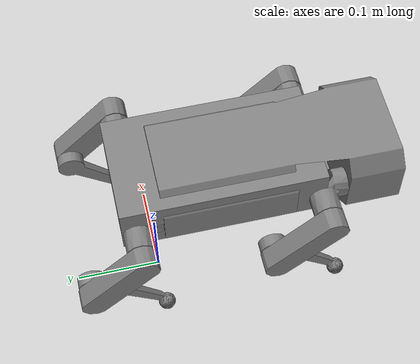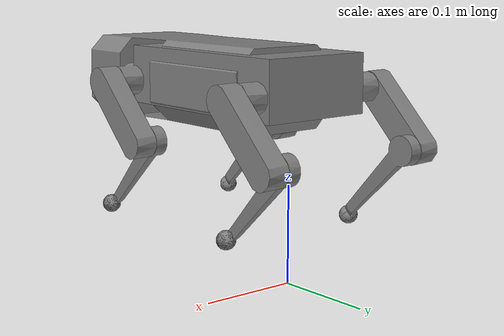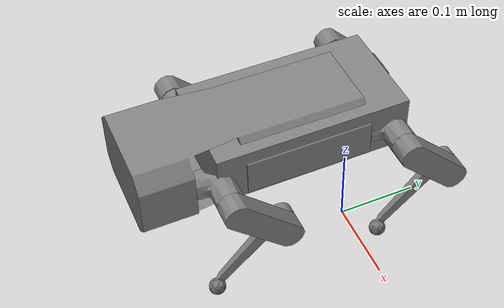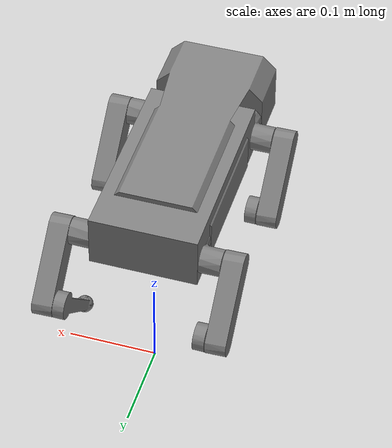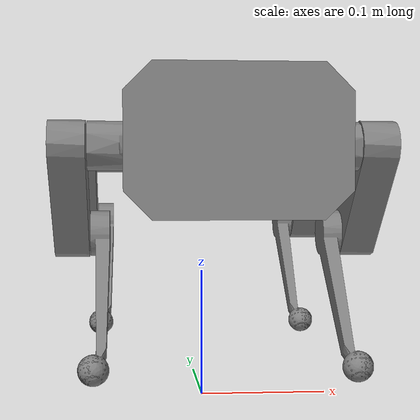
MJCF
<!-- assets/pupper_mjx.xml -->

<mujoco model="pupper_global_pd">
  <compiler angle="radian" meshdir="assets/mesh"/>
  <!--
    【v4.5.0 修正】 增加求解器記憶體分配
    將此定義直接放入機器人模型中，以確保其在任何場景下都生效。
    - nconmax: 最大接觸點數量。
    - njmax:   最大純量約束數量 (nefc 的上限)。
    根據最新的錯誤日誌，nefc 峰值達到 44。我們設定一個遠超此值的
    安全裕度，例如 1000，以應對未來更複雜的模型或地形。
  -->
  <size nconmax="200" njmax="1000"/>

  <!-- 【核心修正】增加求解器迭代次數以提高接觸計算的精度 -->
  <option iterations="1" ls_iterations="5" timestep="0.004" integrator="Euler">
    <flag eulerdamp="disable"/>
  </option>

  <custom>
    <numeric data="30" name="max_contact_points"/>
    <numeric data="12" name="max_geom_pairs"/>
  </custom>

  <default>
    <default class="pupper">
      <!-- 1. Global physical properties for ALL joints -->
      <joint armature="0.005" damping="0.1" frictionloss="0.2"/>

      <!-- 2. Global controller template for ALL position actuators -->
      <general gainprm="0.333" ctrlrange="-5.0 5.0" gear="1" biastype="none"/>

      <!-- Joint-specific kinematics -->
      <default class="abduction">
        <joint axis="0 1 0" range="-1.0472 1.0472"/>
      </default>
      <default class="hip">
        <joint axis="1 0 0" range="-0.76166 3.81442"/>
      </default>
      <default class="knee">
        <joint axis="1 0 0" range="-0.78540 1.65806"/>
      </default>

      <!-- Visual and collision definitions -->
      <default class="visual"> <geom type="mesh" contype="0" conaffinity="0" group="2"/> </default>
      <default class="collision"> <geom/>
        <default class="foot"> <geom type="sphere" size="0.009525" solimp="0.9 .95 0.01" condim="3" friction="0.8 0.1 0.1"/> </default>
      </default>
    </default>
  </default>

  <!-- Assets and Worldbody remain the same -->
  <asset>
    <mesh name="body" file="body.stl" scale="0.001 0.001 0.001"/>
    <mesh name="Hip_L" file="Hip_L.stl" scale="0.001 0.001 0.001"/>
    <mesh name="Hip_R" file="Hip_R.stl" scale="0.001 0.001 0.001"/>
    <mesh name="Upper_Leg_L" file="Upper_Leg_L.stl" scale="0.001 0.001 0.001"/>
    <mesh name="Upper_Leg_R" file="Upper_Leg_R.stl" scale="0.001 0.001 0.001"/>
    <mesh name="Lower_Leg_L" file="Lower_Leg_L.stl" scale="0.001 0.001 0.001"/>
    <mesh name="Lower_Leg_R" file="Lower_Leg_R.stl" scale="0.001 0.001 0.001"/>
  </asset>

  <worldbody>
    <light name="spotlight" mode="targetbodycom" target="torso" pos="3 0 4"/>
    <body name="torso" pos="0 0 0.2" childclass="pupper">
      <camera name="track" pos="0.8 -1.0 0.5" xyaxes="0.707 0.707 0 -0.354 0.354 0.866" mode="trackcom"/>
      <site name="head" pos="0.15 0 0" rgba="1 0 0 1" size="0.02" group="5"/>
      <inertial pos="0 -0.048 -0.00964" mass="0.991" fullinertia="0.00626 0.00175 0.00678 2e-05 0 2e-05" />
      <freejoint/>
      <geom class="visual" mesh="body"/>
      <geom class="collision" type="box" size="0.06 0.11 0.03" pos="0 -0.07 0"/>
      <site name="imu" pos="0 -0.122542 0" size="0.01" group="5"/>
      <body name="FR_hip" pos="-0.046891 -0.203946 -0.0064">
        <inertial pos="0.0139 -0.0269 0" mass="0.106" diaginertia="2e-05 6e-05 6e-05" />
        <joint class="abduction" name="FR_hip_joint"/>
        <geom class="visual" mesh="Hip_R"/>
        <body name="FR_thigh" pos="-0.037 0.028 0" axisangle="1 0 0 0.7854">
          <inertial pos="0.0172 0 -0.061" mass="0.142" diaginertia="0.00014 0.00016 3e-05" />
          <joint class="hip" name="FR_thigh_joint"/>
          <geom class="visual" mesh="Upper_Leg_R"/>
          <body name="FR_calf" pos="0 0 -0.08" axisangle="1 0 0 -1.57">
            <inertial pos="-0.00588 -0.00075 -0.0658" mass="0.038" diaginertia="0.00018 0.00018 2e-05" />
            <joint class="knee" name="FR_calf_joint"/>
            <geom class="visual" mesh="Lower_Leg_R"/>
            <geom name="FR" class="foot" pos="0.003475 0 -0.11"/>
            <site name="FR" pos="0.003475 0 -0.11" type="sphere" size="0.009525" group="5"/>
          </body>
        </body>
      </body>
      <body name="FL_hip" pos="0.047109 -0.203946 -0.0064">
        <inertial pos="0.0139 0.0254 0" mass="0.106" diaginertia="2e-05 6e-05 6e-05" />
        <joint class="abduction" name="FL_hip_joint"/>
        <geom class="visual" mesh="Hip_L"/>
        <body name="FL_thigh" pos="0.037 0.028 0" axisangle="1 0 0 0.7854">
          <inertial pos="0.0172 0 -0.061" mass="0.142" diaginertia="0.00014 0.00016 3e-05" />
          <joint class="hip" name="FL_thigh_joint"/>
          <geom class="visual" mesh="Upper_Leg_L"/>
          <body name="FL_calf" pos="0 0 -0.08" axisangle="1 0 0 -1.57">
            <inertial pos="0.00558 -0.00075 -0.0658" mass="0.038" diaginertia="0.00018 0.00018 2e-05" />
            <joint class="knee" name="FL_calf_joint"/>
            <geom class="visual" mesh="Lower_Leg_L"/>
            <geom name="FL" class="foot" pos="-0.003475 0 -0.11"/>
            <site name="FL" pos="-0.003475 0 -0.11" type="sphere" size="0.009525" group="5"/>
          </body>
        </body>
      </body>
      <body name="RR_hip" pos="-0.046896 -0.004096 -0.0064">
        <inertial pos="0.0139 -0.0269 0" mass="0.106" diaginertia="2e-05 6e-05 6e-05" />
        <joint class="abduction" name="RR_hip_joint"/>
        <geom class="visual" mesh="Hip_R"/>
        <body name="RR_thigh" pos="-0.037 0.028 0" axisangle="1 0 0 0.7854">
          <inertial pos="0.0172 0 -0.061" mass="0.142" diaginertia="0.00014 0.00016 3e-05" />
          <joint class="hip" name="RR_thigh_joint"/>
          <geom class="visual" mesh="Upper_Leg_R"/>
          <body name="RR_calf" pos="0 0 -0.08" axisangle="1 0 0 -1.57">
            <inertial pos="-0.00588 -0.00075 -0.0658" mass="0.038" diaginertia="0.00018 0.00018 2e-05" />
            <joint class="knee" name="RR_calf_joint"/>
            <geom class="visual" mesh="Lower_Leg_R"/>
            <geom name="RR" class="foot" pos="0.003475 0 -0.11"/>
            <site name="RR" pos="0.003475 0 -0.11" type="sphere" size="0.009525" group="5"/>
          </body>
        </body>
      </body>
      <body name="RL_hip" pos="0.047104 -0.004096 -0.0064">
        <inertial pos="0.0139 0.0254 0" mass="0.106" diaginertia="2e-05 6e-05 6e-05" />
        <joint class="abduction" name="RL_hip_joint"/>
        <geom class="visual" mesh="Hip_L"/>
        <body name="RL_thigh" pos="0.037 0.028 0" axisangle="1 0 0 0.7854">
          <inertial pos="0.0172 0 -0.061" mass="0.142" diaginertia="0.00014 0.00016 3e-05" />
          <joint class="hip" name="RL_thigh_joint"/>
          <geom class="visual" mesh="Upper_Leg_L"/>
          <body name="RL_calf" pos="0 0 -0.08" axisangle="1 0 0 -1.57">
            <inertial pos="0.00558 -0.00075 -0.0658" mass="0.038" diaginertia="0.00018 0.00018 2e-05" />
            <joint class="knee" name="RL_calf_joint"/>
            <geom class="visual" mesh="Lower_Leg_L"/>
            <geom name="RL" class="foot" pos="-0.003475 0 -0.11"/>
            <site name="RL" pos="-0.003475 0 -0.11" type="sphere" size="0.009525" group="5"/>
          </body>
        </body>
      </body>
    </body>
  </worldbody>

  <actuator>
      <general name="FR_hip"   joint="FR_hip_joint"/>
      <general name="FR_thigh" joint="FR_thigh_joint"/>
      <general name="FR_calf"  joint="FR_calf_joint"/>
      <general name="FL_hip"   joint="FL_hip_joint"/>
      <general name="FL_thigh" joint="FL_thigh_joint"/>
      <general name="FL_calf"  joint="FL_calf_joint"/>
      <general name="RR_hip"   joint="RR_hip_joint"/>
      <general name="RR_thigh" joint="RR_thigh_joint"/>
      <general name="RR_calf"  joint="RR_calf_joint"/>
      <general name="RL_hip"   joint="RL_hip_joint"/>
      <general name="RL_thigh" joint="RL_thigh_joint"/>
      <general name="RL_calf"  joint="RL_calf_joint"/>
  </actuator>

  <!-- Sensors remain the same -->
  <sensor>
    <gyro site="imu" name="gyro"/>
    <velocimeter site="imu" name="local_linvel"/>
    <accelerometer site="imu" name="accelerometer"/>
    <framepos objtype="site" objname="imu" name="position"/>
    <framezaxis objtype="site" objname="imu" name="upvector"/>
    <framexaxis objtype="site" objname="imu" name="forwardvector"/>
    <framelinvel objtype="site" objname="imu" name="global_linvel"/>
    <frameangvel objtype="site" objname="imu" name="global_angvel"/>
    <framequat objtype="site" objname="imu" name="orientation"/>
    <framelinvel objtype="site" objname="FR" name="FR_global_linvel"/>
    <framelinvel objtype="site" objname="FL" name="FL_global_linvel"/>
    <framelinvel objtype="site" objname="RR" name="RR_global_linvel"/>
    <framelinvel objtype="site" objname="RL" name="RL_global_linvel"/>
    <framepos objtype="site" objname="FR" name="FR_pos" reftype="site" refname="imu"/>
    <framepos objtype="site" objname="FL" name="FL_pos" reftype="site" refname="imu"/>
    <framepos objtype="site" objname="RR" name="RR_pos" reftype="site" refname="imu"/>
    <framepos objtype="site" objname="RL" name="RL_pos" reftype="site" refname="imu"/>
    <framepos objtype="site" objname="head" name="head_pos"/>
  </sensor>
</mujoco>
